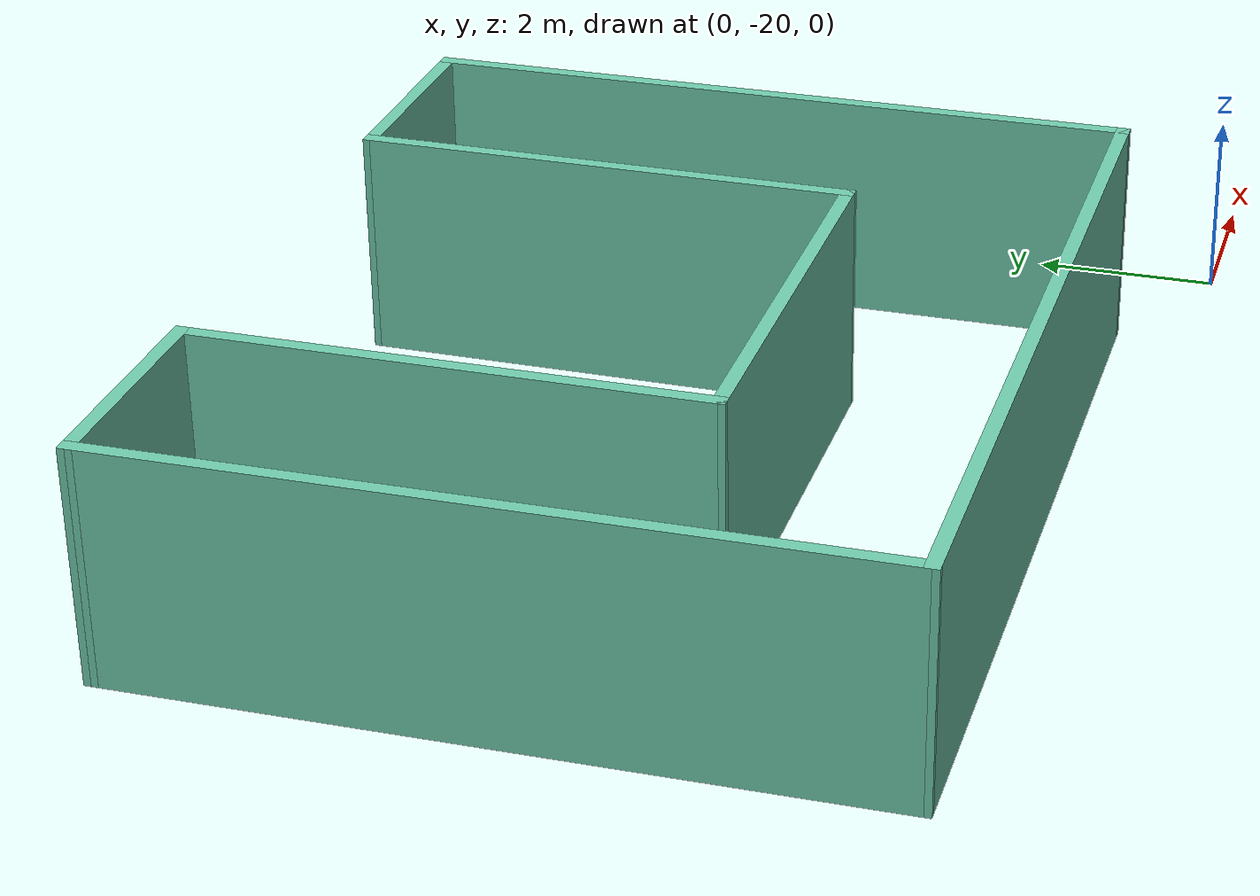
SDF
<?xml version='1.0'?>
<sdf version='1.6'>
  <model name='test'>
    <pose frame=''>-6.44019 -15.1601 0 0 -0 0</pose>
    <link name='Wall_37'>
      <collision name='Wall_37_Collision'>
        <geometry>
          <box>
            <size>8.00006 0.15 2.5</size>
          </box>
        </geometry>
        <pose frame=''>0 0 1.25 0 -0 0</pose>
      </collision>
      <visual name='Wall_37_Visual'>
        <pose frame=''>0 0 1.25 0 -0 0</pose>
        <geometry>
          <box>
            <size>8.00006 0.15 2.5</size>
          </box>
        </geometry>
        <material>
          <script>
            <uri>file://media/materials/scripts/gazebo.material</uri>
            <name>Gazebo/Grey</name>
          </script>
          <ambient>0.435294 0.796078 0.67451 1</ambient>
        </material>
      </visual>
      <pose frame=''>-4.77981 -0.004915 0 0 -0 1.57844</pose>
    </link>
    <link name='Wall_38'>
      <collision name='Wall_38_Collision'>
        <geometry>
          <box>
            <size>2.52002 0.15 2.5</size>
          </box>
        </geometry>
        <pose frame=''>0 0 1.25 0 -0 0</pose>
      </collision>
      <visual name='Wall_38_Visual'>
        <pose frame=''>0 0 1.25 0 -0 0</pose>
        <geometry>
          <box>
            <size>2.52002 0.15 2.5</size>
          </box>
        </geometry>
        <material>
          <script>
            <uri>file://media/materials/scripts/gazebo.material</uri>
            <name>Gazebo/Grey</name>
          </script>
          <ambient>0.435294 0.796078 0.67451 1</ambient>
        </material>
      </visual>
      <pose frame=''>-3.62481 3.92509 0 0 -0 0.004219</pose>
    </link>
    <link name='Wall_39'>
      <collision name='Wall_39_Collision'>
        <geometry>
          <box>
            <size>5.5 0.15 2.5</size>
          </box>
        </geometry>
        <pose frame=''>0 0 1.25 0 -0 0</pose>
      </collision>
      <visual name='Wall_39_Visual'>
        <pose frame=''>0 0 1.25 0 -0 0</pose>
        <geometry>
          <box>
            <size>5.5 0.15 2.5</size>
          </box>
        </geometry>
        <material>
          <script>
            <uri>file://media/materials/scripts/gazebo.material</uri>
            <name>Gazebo/Grey</name>
          </script>
          <ambient>0.435294 0.796078 0.67451 1</ambient>
        </material>
      </visual>
      <pose frame=''>-2.43481 1.25509 0 0 0 -1.56893</pose>
    </link>
    <link name='Wall_40'>
      <collision name='Wall_40_Collision'>
        <geometry>
          <box>
            <size>4.97001 0.15 2.5</size>
          </box>
        </geometry>
        <pose frame=''>0 0 1.25 0 -0 0</pose>
      </collision>
      <visual name='Wall_40_Visual'>
        <pose frame=''>0 0 1.25 0 -0 0</pose>
        <geometry>
          <box>
            <size>4.97001 0.15 2.5</size>
          </box>
        </geometry>
        <material>
          <script>
            <uri>file://media/materials/scripts/gazebo.material</uri>
            <name>Gazebo/Grey</name>
          </script>
          <ambient>0.435294 0.796078 0.67451 1</ambient>
        </material>
      </visual>
      <pose frame=''>-0.01981 -1.42491 0 0 0 -0.002075</pose>
    </link>
    <link name='Wall_41'>
      <collision name='Wall_41_Collision'>
        <geometry>
          <box>
            <size>5.49008 0.15 2.5</size>
          </box>
        </geometry>
        <pose frame=''>0 0 1.25 0 -0 0</pose>
      </collision>
      <visual name='Wall_41_Visual'>
        <pose frame=''>0 0 1.25 0 -0 0</pose>
        <geometry>
          <box>
            <size>5.49008 0.15 2.5</size>
          </box>
        </geometry>
        <material>
          <script>
            <uri>file://media/materials/scripts/gazebo.material</uri>
            <name>Gazebo/Grey</name>
          </script>
          <ambient>0.435294 0.796078 0.67451 1</ambient>
        </material>
      </visual>
      <pose frame=''>2.40519 1.24009 0 0 -0 1.56518</pose>
    </link>
    <link name='Wall_42'>
      <collision name='Wall_42_Collision'>
        <geometry>
          <box>
            <size>2.52 0.15 2.5</size>
          </box>
        </geometry>
        <pose frame=''>0 0 1.25 0 -0 0</pose>
      </collision>
      <visual name='Wall_42_Visual'>
        <pose frame=''>0 0 1.25 0 -0 0</pose>
        <geometry>
          <box>
            <size>2.52 0.15 2.5</size>
          </box>
        </geometry>
        <material>
          <script>
            <uri>file://media/materials/scripts/gazebo.material</uri>
            <name>Gazebo/Grey</name>
          </script>
          <ambient>0.435294 0.796078 0.67451 1</ambient>
        </material>
      </visual>
      <pose frame=''>3.60519 3.91009 0 0 -0 0</pose>
    </link>
    <link name='Wall_43'>
      <collision name='Wall_43_Collision'>
        <geometry>
          <box>
            <size>7.99003 0.15 2.5</size>
          </box>
        </geometry>
        <pose frame=''>0 0 1.25 0 -0 0</pose>
      </collision>
      <visual name='Wall_43_Visual'>
        <pose frame=''>0 0 1.25 0 -0 0</pose>
        <geometry>
          <box>
            <size>7.99003 0.15 2.5</size>
          </box>
        </geometry>
        <material>
          <script>
            <uri>file://media/materials/scripts/gazebo.material</uri>
            <name>Gazebo/Grey</name>
          </script>
          <ambient>0.435294 0.796078 0.67451 1</ambient>
        </material>
      </visual>
      <pose frame=''>4.80019 -0.009915 0 0 0 -1.56824</pose>
    </link>
    <link name='Wall_44'>
      <collision name='Wall_44_Collision'>
        <geometry>
          <box>
            <size>9.71 0.15 2.5</size>
          </box>
        </geometry>
        <pose frame=''>0 0 1.25 0 -0 0</pose>
      </collision>
      <visual name='Wall_44_Visual'>
        <pose frame=''>0 0 1.25 0 -0 0</pose>
        <geometry>
          <box>
            <size>9.71 0.15 2.5</size>
          </box>
        </geometry>
        <material>
          <script>
            <uri>file://media/materials/scripts/gazebo.material</uri>
            <name>Gazebo/Grey</name>
          </script>
          <ambient>0.435294 0.796078 0.67451 1</ambient>
        </material>
      </visual>
      <pose frame=''>0.03019 -3.92991 0 0 -0 3.14159</pose>
    </link>
    <static>1</static>
  </model>
</sdf>
